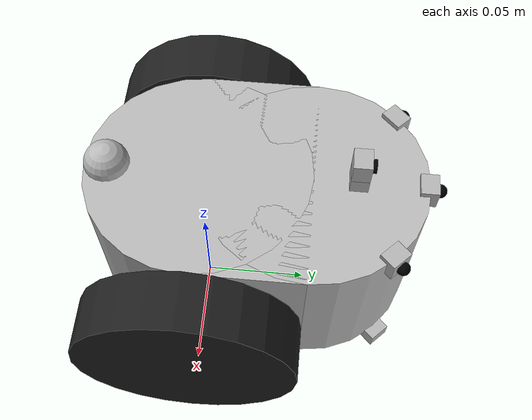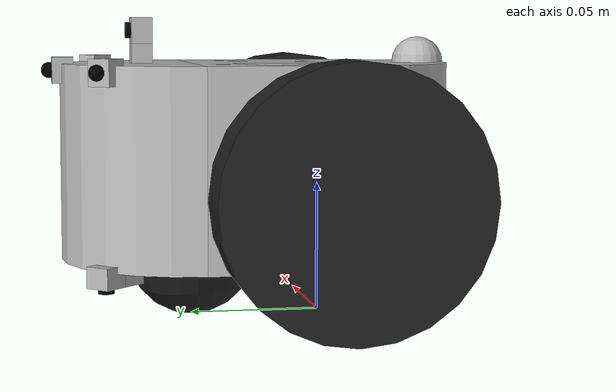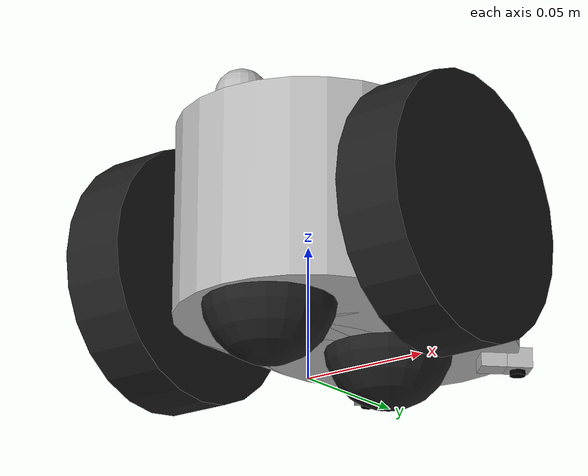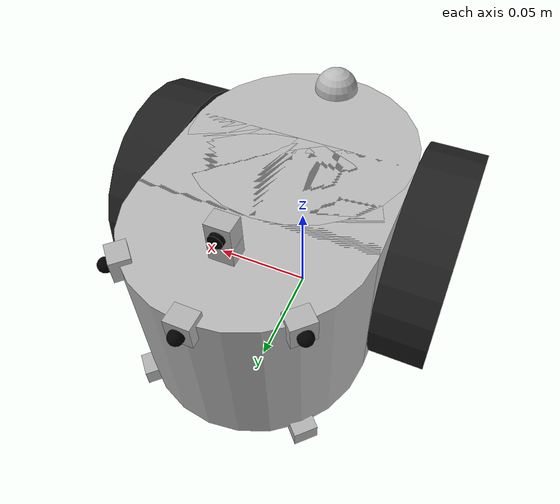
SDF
<?xml version='1.0'?>
<sdf version='1.6'>
  <model name='robot'>
    <link name='base_link'>
      <inertial>
        <mass>0.2</mass>
        <inertia>
          <ixx>0.00021875</ixx>
          <ixy>0</ixy>
          <ixz>0</ixz>
          <iyy>0.00021875</iyy>
          <iyz>0</iyz>
          <izz>0.00025</izz>
        </inertia>
        <pose frame=''>0 0 0 0 -0 0</pose>
      </inertial>
      <pose frame=''>0 0 0.06 0 -0 0</pose>
      <gravity>1</gravity>
      <self_collide>0</self_collide>
      <kinematic>0</kinematic>
      <enable_wind>0</enable_wind>
      <visual name='visual_rear'>
        <pose frame=''>0 0 0 0 -0 0</pose>
        <geometry>
          <cylinder>
            <radius>0.05</radius>
            <length>0.075</length>
          </cylinder>
        </geometry>
        <plugin name="set_color_rear" filename="libchange_body_color.so">
          <color>1.0 1.0 1.0 1.0</color>
        </plugin>
        <transparency>0</transparency>
        <cast_shadows>1</cast_shadows>
      </visual>
      <visual name='visual_front'>
        <pose frame=''>0 0.05 0 0 -0 0</pose>
        <geometry>
          <cylinder>
            <radius>0.05</radius>
            <length>0.075</length>
          </cylinder>
        </geometry>
        <plugin name="set_color_front" filename="libchange_body_color.so">
          <color>1.0 1.0 1.0 1.0</color>
        </plugin>
        <transparency>0</transparency>
        <cast_shadows>1</cast_shadows>
      </visual>
      <visual name='visual_middle'>
        <pose frame=''>0 0.025 0 0 -0 0</pose>
        <geometry>
          <box>
            <size>0.1 0.05 0.075</size>
          </box>
        </geometry>
        <plugin name="set_color_middle" filename="libchange_body_color.so">
          <color>1.0 1.0 1.0 1.0</color>
        </plugin>
        <transparency>0</transparency>
        <cast_shadows>1</cast_shadows>
      </visual>
      <collision name='collision_middle'>
        <laser_retro>0</laser_retro>
        <max_contacts>10</max_contacts>
        <pose frame=''>0 0.025 0 0 -0 0</pose>
        <geometry>
          <box>
            <size>0.1 0.05 0.075</size>
          </box>
        </geometry>
        <surface>
          <friction>
            <ode>
              <mu>1</mu>
              <mu2>1</mu2>
              <fdir1>0 0 0</fdir1>
              <slip1>0</slip1>
              <slip2>0</slip2>
            </ode>
            <torsional>
              <coefficient>1</coefficient>
              <patch_radius>0</patch_radius>
              <surface_radius>0</surface_radius>
              <use_patch_radius>1</use_patch_radius>
              <ode>
                <slip>0</slip>
              </ode>
            </torsional>
          </friction>
          <bounce>
            <restitution_coefficient>0</restitution_coefficient>
            <threshold>1e+06</threshold>
          </bounce>
          <contact>
            <collide_without_contact>0</collide_without_contact>
            <collide_without_contact_bitmask>1</collide_without_contact_bitmask>
            <collide_bitmask>1</collide_bitmask>
            <ode>
              <soft_cfm>0</soft_cfm>
              <soft_erp>0.2</soft_erp>
              <kp>1e+13</kp>
              <kd>1</kd>
              <max_vel>0.01</max_vel>
              <min_depth>0</min_depth>
            </ode>
            <bullet>
              <split_impulse>1</split_impulse>
              <split_impulse_penetration_threshold>-0.01</split_impulse_penetration_threshold>
              <soft_cfm>0</soft_cfm>
              <soft_erp>0.2</soft_erp>
              <kp>1e+13</kp>
              <kd>1</kd>
            </bullet>
          </contact>
        </surface>
      </collision>
      <collision name='collision_rear'>
        <laser_retro>0</laser_retro>
        <max_contacts>10</max_contacts>
        <pose frame=''>0 0 0 0 -0 0</pose>
        <geometry>
          <cylinder>
            <radius>0.05</radius>
            <length>0.075</length>
          </cylinder>
        </geometry>
        <surface>
          <friction>
            <ode>
              <mu>1</mu>
              <mu2>1</mu2>
              <fdir1>0 0 0</fdir1>
              <slip1>0</slip1>
              <slip2>0</slip2>
            </ode>
            <torsional>
              <coefficient>1</coefficient>
              <patch_radius>0</patch_radius>
              <surface_radius>0</surface_radius>
              <use_patch_radius>1</use_patch_radius>
              <ode>
                <slip>0</slip>
              </ode>
            </torsional>
          </friction>
          <bounce>
            <restitution_coefficient>0</restitution_coefficient>
            <threshold>1e+06</threshold>
          </bounce>
          <contact>
            <collide_without_contact>0</collide_without_contact>
            <collide_without_contact_bitmask>1</collide_without_contact_bitmask>
            <collide_bitmask>1</collide_bitmask>
            <ode>
              <soft_cfm>0</soft_cfm>
              <soft_erp>0.2</soft_erp>
              <kp>1e+13</kp>
              <kd>1</kd>
              <max_vel>0.01</max_vel>
              <min_depth>0</min_depth>
            </ode>
            <bullet>
              <split_impulse>1</split_impulse>
              <split_impulse_penetration_threshold>-0.01</split_impulse_penetration_threshold>
              <soft_cfm>0</soft_cfm>
              <soft_erp>0.2</soft_erp>
              <kp>1e+13</kp>
              <kd>1</kd>
            </bullet>
          </contact>
        </surface>
      </collision>
      <collision name='collision_front'>
        <laser_retro>0</laser_retro>
        <max_contacts>10</max_contacts>
        <pose frame=''>0 0.05 0 0 -0 0</pose>
        <geometry>
          <cylinder>
            <radius>0.05</radius>
            <length>0.075</length>
          </cylinder>
        </geometry>
        <surface>
          <friction>
            <ode>
              <mu>1</mu>
              <mu2>1</mu2>
              <fdir1>0 0 0</fdir1>
              <slip1>0</slip1>
              <slip2>0</slip2>
            </ode>
            <torsional>
              <coefficient>1</coefficient>
              <patch_radius>0</patch_radius>
              <surface_radius>0</surface_radius>
              <use_patch_radius>1</use_patch_radius>
              <ode>
                <slip>0</slip>
              </ode>
            </torsional>
          </friction>
          <bounce>
            <restitution_coefficient>0</restitution_coefficient>
            <threshold>1e+06</threshold>
          </bounce>
          <contact>
            <collide_without_contact>0</collide_without_contact>
            <collide_without_contact_bitmask>1</collide_without_contact_bitmask>
            <collide_bitmask>1</collide_bitmask>
            <ode>
              <soft_cfm>0</soft_cfm>
              <soft_erp>0.2</soft_erp>
              <kp>1e+13</kp>
              <kd>1</kd>
              <max_vel>0.01</max_vel>
              <min_depth>0</min_depth>
            </ode>
            <bullet>
              <split_impulse>1</split_impulse>
              <split_impulse_penetration_threshold>-0.01</split_impulse_penetration_threshold>
              <soft_cfm>0</soft_cfm>
              <soft_erp>0.2</soft_erp>
              <kp>1e+13</kp>
              <kd>1</kd>
            </bullet>
          </contact>
        </surface>
      </collision>
<!-- The LED -->
      <visual name='LED'>
        <pose>0 -0.04 0.0375 0 0 0</pose>
        <geometry>
          <sphere>
            <radius>0.01</radius>
          </sphere>
        </geometry>
        <plugin name='led_controller' filename='libchange_led_color.so'>
          <topicName>led_switch</topicName>
          <color>0.2 0.2 0.2 0.5</color>
        </plugin>
      </visual>
<!-- IMU Sensor -->
      <sensor name="imu_sensor" type="imu">
        <pose>0 0 0 0 0 0</pose>
        <always_on>1</always_on>
        <update_rate>100</update_rate>
        <imu>
        </imu>
        <plugin name="imu_plugin" filename="libgazebo_ros_imu_sensor.so">
          <alwaysOn>true</alwaysOn>
          <frameName>base_link</frameName>
          <bodyName>base_link</bodyName>
          <frameId>base_link</frameId>
          <topicName>imu_data</topicName>
          <serviceName>imu_service</serviceName>
          <gaussianNoise>0.0</gaussianNoise>
          <updateRate>20.0</updateRate>
          <xyzOffsets>0 0 0</xyzOffsets>
          <rpyOffsets>0 0 0</rpyOffsets>
        </plugin>
      </sensor>
    </link>
    <link name='ball_front'>
      <inertial>
        <mass>0.1</mass>
        <inertia>
          <ixx>2.5e-05</ixx>
          <ixy>0</ixy>
          <ixz>0</ixz>
          <iyy>2.5e-05</iyy>
          <iyz>0</iyz>
          <izz>2.5e-05</izz>
        </inertia>
        <pose frame=''>0 0 0 0 -0 0</pose>
      </inertial>
      <pose frame=''>0 0.05 0.025 0 -0 0</pose>
      <gravity>1</gravity>
      <self_collide>0</self_collide>
      <kinematic>0</kinematic>
      <enable_wind>0</enable_wind>
      <visual name='visual'>
        <pose frame=''>0 0 0 0 -0 0</pose>
        <geometry>
          <sphere>
            <radius>0.025</radius>
          </sphere>
        </geometry>
        <material>
          <lighting>1</lighting>
          <script>
            <uri>file://media/materials/scripts/gazebo.material</uri>
            <name>Gazebo/Black</name>
          </script>
          <shader type='pixel'>
            <normal_map>__default__</normal_map>
          </shader>
          <ambient>0 0 0 1</ambient>
          <diffuse>0 0 0 1</diffuse>
          <specular>0.01 0.01 0.01 1</specular>
          <emissive>0 0 0 1</emissive>
        </material>
        <transparency>0</transparency>
        <cast_shadows>1</cast_shadows>
      </visual>
      <collision name='collision'>
        <laser_retro>0</laser_retro>
        <max_contacts>10</max_contacts>
        <pose frame=''>0 0 0 0 -0 0</pose>
        <geometry>
          <sphere>
            <radius>0.025</radius>
          </sphere>
        </geometry>
        <surface>
          <friction>
            <ode>
              <mu>0</mu>
              <mu2>0</mu2>
              <fdir1>0 0 0</fdir1>
              <slip1>0</slip1>
              <slip2>0</slip2>
            </ode>
            <torsional>
              <coefficient>1</coefficient>
              <patch_radius>0</patch_radius>
              <surface_radius>0</surface_radius>
              <use_patch_radius>1</use_patch_radius>
              <ode>
                <slip>0</slip>
              </ode>
            </torsional>
          </friction>
          <bounce>
            <restitution_coefficient>0</restitution_coefficient>
            <threshold>1e+06</threshold>
          </bounce>
          <contact>
            <collide_without_contact>0</collide_without_contact>
            <collide_without_contact_bitmask>1</collide_without_contact_bitmask>
            <collide_bitmask>1</collide_bitmask>
            <ode>
              <soft_cfm>0</soft_cfm>
              <soft_erp>0.2</soft_erp>
              <kp>1e+13</kp>
              <kd>1</kd>
              <max_vel>0.01</max_vel>
              <min_depth>0</min_depth>
            </ode>
            <bullet>
              <split_impulse>1</split_impulse>
              <split_impulse_penetration_threshold>-0.01</split_impulse_penetration_threshold>
              <soft_cfm>0</soft_cfm>
              <soft_erp>0.2</soft_erp>
              <kp>1e+13</kp>
              <kd>1</kd>
            </bullet>
          </contact>
        </surface>
      </collision>
    </link>
    <link name='ball_rear'>
      <inertial>
        <mass>0.1</mass>
        <inertia>
          <ixx>2.5e-05</ixx>
          <ixy>0</ixy>
          <ixz>0</ixz>
          <iyy>2.5e-05</iyy>
          <iyz>0</iyz>
          <izz>2.5e-05</izz>
        </inertia>
        <pose frame=''>0 0 0 0 -0 0</pose>
      </inertial>
      <pose frame=''>0 -0.023 0.025 0 -0 0</pose>
      <gravity>1</gravity>
      <self_collide>0</self_collide>
      <kinematic>0</kinematic>
      <enable_wind>0</enable_wind>
      <visual name='visual'>
        <pose frame=''>0 0 0 0 -0 0</pose>
        <geometry>
          <sphere>
            <radius>0.025</radius>
          </sphere>
        </geometry>
        <material>
          <lighting>1</lighting>
          <script>
            <uri>file://media/materials/scripts/gazebo.material</uri>
            <name>Gazebo/Black</name>
          </script>
          <shader type='pixel'>
            <normal_map>__default__</normal_map>
          </shader>
          <ambient>0 0 0 1</ambient>
          <diffuse>0 0 0 1</diffuse>
          <specular>0.01 0.01 0.01 1</specular>
          <emissive>0 0 0 1</emissive>
        </material>
        <transparency>0</transparency>
        <cast_shadows>1</cast_shadows>
      </visual>
      <collision name='collision'>
        <laser_retro>0</laser_retro>
        <max_contacts>10</max_contacts>
        <pose frame=''>0 0 0 0 -0 0</pose>
        <geometry>
          <sphere>
            <radius>0.025</radius>
          </sphere>
        </geometry>
        <surface>
          <friction>
            <ode>
              <mu>0</mu>
              <mu2>0</mu2>
              <fdir1>0 0 0</fdir1>
              <slip1>0</slip1>
              <slip2>0</slip2>
            </ode>
            <torsional>
              <coefficient>1</coefficient>
              <patch_radius>0</patch_radius>
              <surface_radius>0</surface_radius>
              <use_patch_radius>1</use_patch_radius>
              <ode>
                <slip>0</slip>
              </ode>
            </torsional>
          </friction>
          <bounce>
            <restitution_coefficient>0</restitution_coefficient>
            <threshold>1e+06</threshold>
          </bounce>
          <contact>
            <collide_without_contact>0</collide_without_contact>
            <collide_without_contact_bitmask>1</collide_without_contact_bitmask>
            <collide_bitmask>1</collide_bitmask>
            <ode>
              <soft_cfm>0</soft_cfm>
              <soft_erp>0.2</soft_erp>
              <kp>1e+13</kp>
              <kd>1</kd>
              <max_vel>0.01</max_vel>
              <min_depth>0</min_depth>
            </ode>
            <bullet>
              <split_impulse>1</split_impulse>
              <split_impulse_penetration_threshold>-0.01</split_impulse_penetration_threshold>
              <soft_cfm>0</soft_cfm>
              <soft_erp>0.2</soft_erp>
              <kp>1e+13</kp>
              <kd>1</kd>
            </bullet>
          </contact>
        </surface>
      </collision>
    </link>
    <link name='l_wheel'>
      <inertial>
        <mass>0.1</mass>
        <inertia>
          <ixx>6.771e-05</ixx>
          <ixy>0</ixy>
          <ixz>0</ixz>
          <iyy>6.771e-05</iyy>
          <iyz>0</iyz>
          <izz>0.000125</izz>
        </inertia>
        <pose frame=''>0 0 0 0 -0 0</pose>
      </inertial>
      <pose frame=''>-0.0625 0 0.05 0 1.5707 0</pose>
      <gravity>1</gravity>
      <self_collide>0</self_collide>
      <kinematic>0</kinematic>
      <enable_wind>0</enable_wind>
      <visual name='visual'>
        <pose frame=''>0 0 0 0 -0 0</pose>
        <geometry>
          <cylinder>
            <radius>0.05</radius>
            <length>0.025</length>
          </cylinder>
        </geometry>
        <material>
          <lighting>1</lighting>
          <script>
            <uri>file://media/materials/scripts/gazebo.material</uri>
            <name>Gazebo/Black</name>
          </script>
          <shader type='pixel'>
            <normal_map>__default__</normal_map>
          </shader>
          <ambient>0 0 0 1</ambient>
          <diffuse>0 0 0 1</diffuse>
          <specular>0.01 0.01 0.01 1</specular>
          <emissive>0 0 0 1</emissive>
        </material>
        <transparency>0</transparency>
        <cast_shadows>1</cast_shadows>
      </visual>
      <collision name='collision'>
        <laser_retro>0</laser_retro>
        <max_contacts>10</max_contacts>
        <pose frame=''>0 0 0 0 -0 0</pose>
        <geometry>
          <cylinder>
            <radius>0.05</radius>
            <length>0.025</length>
          </cylinder>
        </geometry>
        <surface>
          <friction>
            <ode>
              <mu>1</mu>
              <mu2>1</mu2>
              <fdir1>0 0 0</fdir1>
              <slip1>0</slip1>
              <slip2>0</slip2>
            </ode>
            <torsional>
              <coefficient>1</coefficient>
              <patch_radius>0</patch_radius>
              <surface_radius>0</surface_radius>
              <use_patch_radius>1</use_patch_radius>
              <ode>
                <slip>0</slip>
              </ode>
            </torsional>
          </friction>
          <bounce>
            <restitution_coefficient>0</restitution_coefficient>
            <threshold>1e+06</threshold>
          </bounce>
          <contact>
            <collide_without_contact>0</collide_without_contact>
            <collide_without_contact_bitmask>1</collide_without_contact_bitmask>
            <collide_bitmask>1</collide_bitmask>
            <ode>
              <soft_cfm>0</soft_cfm>
              <soft_erp>0.2</soft_erp>
              <kp>1e+13</kp>
              <kd>1</kd>
              <max_vel>0.01</max_vel>
              <min_depth>0</min_depth>
            </ode>
            <bullet>
              <split_impulse>1</split_impulse>
              <split_impulse_penetration_threshold>-0.01</split_impulse_penetration_threshold>
              <soft_cfm>0</soft_cfm>
              <soft_erp>0.2</soft_erp>
              <kp>1e+13</kp>
              <kd>1</kd>
            </bullet>
          </contact>
        </surface>
      </collision>
    </link>
    <link name='r_wheel'>
      <inertial>
        <mass>0.1</mass>
        <inertia>
          <ixx>6.771e-05</ixx>
          <ixy>0</ixy>
          <ixz>0</ixz>
          <iyy>6.771e-05</iyy>
          <iyz>0</iyz>
          <izz>0.000125</izz>
        </inertia>
        <pose frame=''>0 0 0 0 -0 0</pose>
      </inertial>
      <pose frame=''>0.0625 0 0.05 0 1.5707 0</pose>
      <gravity>1</gravity>
      <self_collide>0</self_collide>
      <kinematic>0</kinematic>
      <enable_wind>0</enable_wind>
      <visual name='visual'>
        <pose frame=''>0 0 0 0 -0 0</pose>
        <geometry>
          <cylinder>
            <radius>0.05</radius>
            <length>0.025</length>
          </cylinder>
        </geometry>
        <material>
          <lighting>1</lighting>
          <script>
            <uri>file://media/materials/scripts/gazebo.material</uri>
            <name>Gazebo/Black</name>
          </script>
          <shader type='pixel'>
            <normal_map>__default__</normal_map>
          </shader>
          <ambient>0 0 0 1</ambient>
          <diffuse>0 0 0 1</diffuse>
          <specular>0.01 0.01 0.01 1</specular>
          <emissive>0 0 0 1</emissive>
        </material>
        <transparency>0</transparency>
        <cast_shadows>1</cast_shadows>
      </visual>
      <collision name='collision'>
        <laser_retro>0</laser_retro>
        <max_contacts>10</max_contacts>
        <pose frame=''>0 0 0 0 -0 0</pose>
        <geometry>
          <cylinder>
            <radius>0.05</radius>
            <length>0.025</length>
          </cylinder>
        </geometry>
        <surface>
          <friction>
            <ode>
              <mu>1</mu>
              <mu2>1</mu2>
              <fdir1>0 0 0</fdir1>
              <slip1>0</slip1>
              <slip2>0</slip2>
            </ode>
            <torsional>
              <coefficient>1</coefficient>
              <patch_radius>0</patch_radius>
              <surface_radius>0</surface_radius>
              <use_patch_radius>1</use_patch_radius>
              <ode>
                <slip>0</slip>
              </ode>
            </torsional>
          </friction>
          <bounce>
            <restitution_coefficient>0</restitution_coefficient>
            <threshold>1e+06</threshold>
          </bounce>
          <contact>
            <collide_without_contact>0</collide_without_contact>
            <collide_without_contact_bitmask>1</collide_without_contact_bitmask>
            <collide_bitmask>1</collide_bitmask>
            <ode>
              <soft_cfm>0</soft_cfm>
              <soft_erp>0.2</soft_erp>
              <kp>1e+13</kp>
              <kd>1</kd>
              <max_vel>0.01</max_vel>
              <min_depth>0</min_depth>
            </ode>
            <bullet>
              <split_impulse>1</split_impulse>
              <split_impulse_penetration_threshold>-0.01</split_impulse_penetration_threshold>
              <soft_cfm>0</soft_cfm>
              <soft_erp>0.2</soft_erp>
              <kp>1e+13</kp>
              <kd>1</kd>
            </bullet>
          </contact>
        </surface>
      </collision>
    </link>
    <joint name='base_link_JOINT_0' type='fixed'>
      <parent>base_link</parent>
      <child>ball_rear</child>
      <pose frame=''>0 0 0 0 -0 0</pose>
      <physics>
        <ode>
          <limit>
            <cfm>0</cfm>
            <erp>0.2</erp>
          </limit>
          <suspension>
            <cfm>0</cfm>
            <erp>0.2</erp>
          </suspension>
        </ode>
      </physics>
    </joint>
    <joint name='base_link_JOINT_1' type='fixed'>
      <parent>base_link</parent>
      <child>ball_front</child>
      <pose frame=''>0 0 0 0 -0 0</pose>
      <physics>
        <ode>
          <limit>
            <cfm>0</cfm>
            <erp>0.2</erp>
          </limit>
          <suspension>
            <cfm>0</cfm>
            <erp>0.2</erp>
          </suspension>
        </ode>
      </physics>
    </joint>
    <joint name='left_wheel_hinge' type='revolute'>
      <parent>base_link</parent>
      <child>l_wheel</child>
      <pose frame=''>0 0 0 0 -0 0</pose>
      <axis>
        <xyz>0 0 -1</xyz>
        <use_parent_model_frame>0</use_parent_model_frame>
        <dynamics>
          <spring_reference>0</spring_reference>
          <spring_stiffness>0</spring_stiffness>
          <damping>0</damping>
          <friction>0</friction>
        </dynamics>
      </axis>
      <physics>
        <ode>
          <limit>
            <cfm>0</cfm>
            <erp>0.2</erp>
          </limit>
          <suspension>
            <cfm>0</cfm>
            <erp>0.2</erp>
          </suspension>
        </ode>
      </physics>
    </joint>
    <joint name='right_wheel_hinge' type='revolute'>
      <parent>base_link</parent>
      <child>r_wheel</child>
      <pose frame=''>0 0 0 0 -0 0</pose>
      <axis>
        <xyz>0 0 -1</xyz>
        <use_parent_model_frame>0</use_parent_model_frame>
        <dynamics>
          <spring_reference>0</spring_reference>
          <spring_stiffness>0</spring_stiffness>
          <damping>0</damping>
          <friction>0</friction>
        </dynamics>
      </axis>
      <physics>
        <ode>
          <limit>
            <cfm>0</cfm>
            <erp>0.2</erp>
          </limit>
          <suspension>
            <cfm>0</cfm>
            <erp>0.2</erp>
          </suspension>
        </ode>
      </physics>
    </joint>
<!-- CAMERA -->
    <link name="camera_link">
      <pose>0.0 0.07 0.11 0 0 1.5707</pose>
      <inertial>
        <mass>0.001</mass>
        <inertia>
          <ixx>0.000166667</ixx>
          <iyy>0.000166667</iyy>
          <izz>0.000166667</izz>
        </inertia>
      </inertial>
      <collision name="collision-box">
        <pose>-0.001 0 0 0 0 0</pose>
        <geometry>
          <box>
            <size>0.008 0.01 0.01</size>
          </box>
        </geometry>
      </collision>
      <collision name="collision-lens">
        <pose>0.004 0 0 0 1.57 0</pose>
        <geometry>
          <cylinder>
            <radius>0.003</radius>
            <length>0.002</length>
          </cylinder>
        </geometry>
      </collision>
      <visual name="visual-box">
        <pose>-0.001 0 0 0 0 0</pose>
        <geometry>
          <box>
            <size>0.008 0.01 0.01</size>
          </box>
        </geometry>
        <material>
          <ambient>0.3 0.3 0.3 1</ambient>
          <diffuse>0.7 0.7 0.7 1</diffuse>
          <specular>0.1 0.1 0.1 1</specular>
          <emissive>0 0 0 0</emissive>
        </material>
      </visual>
      <visual name="visual-lens">
        <pose>0.004 0 0 0 1.57 0</pose>
        <geometry>
          <cylinder>
            <radius>0.003</radius>
            <length>0.002</length>
          </cylinder>
        </geometry>
        <material>
          <ambient>0 0 0 1</ambient>
          <diffuse>0 0 0 1</diffuse>
          <specular>0.1 0.1 0.1 1</specular>
          <emissive>0 0 0 0</emissive>
        </material>
      </visual>
      <visual name="visual-box-lifter">
        <pose>-0.001 0 -0.01 0 0 0</pose>
        <geometry>
          <box>
            <size>0.008 0.01 0.01</size>
          </box>
        </geometry>
        <material>
          <ambient>0.3 0.3 0.3 1</ambient>
          <diffuse>0.7 0.7 0.7 1</diffuse>
          <specular>0.1 0.1 0.1 1</specular>
          <emissive>0 0 0 0</emissive>
        </material>
      </visual>
<!-- RGB CAMERA SENSOR-->
      <sensor type="camera" name="camera">
        <update_rate>20</update_rate>
        <visualize>false</visualize>
        <camera name="camera">
          <horizontal_fov>1.047</horizontal_fov>
          <image>
            <width>100</width>
            <height>100</height>
            <format>R8G8B8</format>
          </image>
          <clip>
            <near>0.05</near>
            <far>10</far>
          </clip>
          <!-- Noise is sampled independently per pixel on each frame.
               That pixel's noise value is added to each of its color
               channels, which at that point lie in the range [0,1]. -->
        </camera>
        <plugin name="camera_controller" filename="libgazebo_ros_camera.so">
          <alwaysOn>true</alwaysOn>
          <updateRate>0.0</updateRate>
          <cameraName>camera/rgb</cameraName>
          <imageTopicName>image_raw</imageTopicName>
          <cameraInfoTopicName>camera_info</cameraInfoTopicName>
          <frameName>camera_link</frameName>
          <hackBaseline>0.07</hackBaseline>
          <distortionK1>0.0</distortionK1>
          <distortionK2>0.0</distortionK2>
          <distortionK3>0.0</distortionK3>
          <distortionT1>0.0</distortionT1>
          <distortionT2>0.0</distortionT2>
        </plugin>
      </sensor>
    </link>
    <joint name="camera_joint" type="fixed">
      <parent>base_link</parent>
      <child>camera_link</child>
      <pose frame=''>0 0 0 0 -0 0</pose>
      <physics>
        <ode>
          <limit>
            <cfm>0</cfm>
            <erp>0.2</erp>
          </limit>
          <suspension>
            <cfm>0</cfm>
            <erp>0.2</erp>
          </suspension>
        </ode>
      </physics>
    </joint>
<!-- SONAR(Front) -->
    <link name="sonar_f_link">
      <pose>0.0 0.10 0.095 0 0 1.5707</pose>
      <inertial>
        <mass>0.001</mass>
        <inertia>
          <ixx>0.000166667</ixx>
          <iyy>0.000166667</iyy>
          <izz>0.000166667</izz>
        </inertia>
      </inertial>
      <collision name="collision-box">
        <pose>-0.001 0 0 0 0 0</pose>
        <geometry>
          <box>
            <size>0.008 0.01 0.01</size>
          </box>
        </geometry>
      </collision>
      <collision name="collision-dome">
        <pose>0.004 0 0 0 0 0</pose>
        <geometry>
          <sphere>
            <radius>0.003</radius>
          </sphere>
        </geometry>
      </collision>
      <visual name="visual-box">
        <pose>-0.001 0 0 0 0 0</pose>
        <geometry>
          <box>
            <size>0.008 0.01 0.01</size>
          </box>
        </geometry>
        <material>
          <ambient>0.3 0.3 0.3 1</ambient>
          <diffuse>0.7 0.7 0.7 1</diffuse>
          <specular>0.1 0.1 0.1 1</specular>
          <emissive>0 0 0 0</emissive>
        </material>
      </visual>
      <visual name="visual-dome">
        <pose>0.004 0 0 0 0 0</pose>
        <geometry>
          <sphere>
            <radius>0.003</radius>
          </sphere>
        </geometry>
        <material>
          <ambient>0 0 0 1</ambient>
          <diffuse>0 0 0 1</diffuse>
          <specular>0.1 0.1 0.1 1</specular>
          <emissive>0 0 0 0</emissive>
        </material>
      </visual>
<!-- SONAR SENSOR -->
      <sensor name="sonar_f" type="ray">
        <always_on>1</always_on>
        <update_rate>10</update_rate>
        <visualize>false</visualize>
        <ray>
          <scan>
            <horizontal>
              <samples>1</samples>
              <resolution>1</resolution>
              <min_angle>0</min_angle>
              <max_angle>0</max_angle>
            </horizontal>
            <vertical>
              <samples>1</samples>
              <resolution>1</resolution>
              <min_angle>0</min_angle>
              <max_angle>0</max_angle>
            </vertical>
          </scan>
          <range>
            <min>0.03</min>
            <max>3</max>
            <resolution>0.01</resolution>
          </range>
        </ray>
        <plugin filename="libgazebo_ros_range.so" name="gazebo_ros_range_f">
          <alwaysOn>true</alwaysOn>
          <updateRate>50</updateRate>
          <topicName>sonar_f</topicName>
          <frameName>sonar_f_link</frameName>
          <radiation>INFRARED</radiation>
          <fov>0.2967</fov>
        </plugin>
        <pose>0 0 0 0 0 0</pose>
      </sensor>
    </link>
    <joint name="sonar_f_joint" type="fixed">
      <parent>base_link</parent>
      <child>sonar_f_link</child>
      <pose frame=''>0 0 0 0 -0 0</pose>
      <physics>
        <ode>
          <limit>
            <cfm>0</cfm>
            <erp>0.2</erp>
          </limit>
          <suspension>
            <cfm>0</cfm>
            <erp>0.2</erp>
          </suspension>
        </ode>
      </physics>
    </joint>

<!-- SONAR(Right) -->
    <link name="sonar_r_link">
      <pose>0.035355678 0.085355678 0.095 0 0 0.78535</pose>
      <inertial>
        <mass>0.001</mass>
        <inertia>
          <ixx>0.000166667</ixx>
          <iyy>0.000166667</iyy>
          <izz>0.000166667</izz>
        </inertia>
      </inertial>
      <collision name="collision-box">
        <pose>-0.001 0 0 0 0 0</pose>
        <geometry>
          <box>
            <size>0.008 0.01 0.01</size>
          </box>
        </geometry>
      </collision>
      <collision name="collision-dome">
        <pose>0.004 0 0 0 0 0</pose>
        <geometry>
          <sphere>
            <radius>0.003</radius>
          </sphere>
        </geometry>
      </collision>
      <visual name="visual-box">
        <pose>-0.001 0 0 0 0 0</pose>
        <geometry>
          <box>
            <size>0.008 0.01 0.01</size>
          </box>
        </geometry>
        <material>
          <ambient>0.3 0.3 0.3 1</ambient>
          <diffuse>0.7 0.7 0.7 1</diffuse>
          <specular>0.1 0.1 0.1 1</specular>
          <emissive>0 0 0 0</emissive>
        </material>
      </visual>
      <visual name="visual-dome">
        <pose>0.004 0 0 0 0 0</pose>
        <geometry>
          <sphere>
            <radius>0.003</radius>
          </sphere>
        </geometry>
        <material>
          <ambient>0 0 0 1</ambient>
          <diffuse>0 0 0 1</diffuse>
          <specular>0.1 0.1 0.1 1</specular>
          <emissive>0 0 0 0</emissive>
        </material>
      </visual>
<!-- SONAR SENSOR -->
      <sensor name="sonar_r" type="ray">
        <always_on>1</always_on>
        <update_rate>10</update_rate>
        <visualize>false</visualize>
        <ray>
          <scan>
            <horizontal>
              <samples>1</samples>
              <resolution>1</resolution>
              <min_angle>0</min_angle>
              <max_angle>0</max_angle>
            </horizontal>
            <vertical>
              <samples>1</samples>
              <resolution>1</resolution>
              <min_angle>0</min_angle>
              <max_angle>0</max_angle>
            </vertical>
          </scan>
          <range>
            <min>0.03</min>
            <max>3</max>
            <resolution>0.01</resolution>
          </range>
        </ray>
        <plugin filename="libgazebo_ros_range.so" name="gazebo_ros_range_r">
          <alwaysOn>true</alwaysOn>
          <updateRate>50</updateRate>
          <topicName>sonar_r</topicName>
          <frameName>sonar_r_link</frameName>
          <radiation>INFRARED</radiation>
          <fov>0.2967</fov>
        </plugin>
        <pose>0 0 0 0 0 0</pose>
      </sensor>
    </link>
    <joint name="sonar_r_joint" type="fixed">
      <parent>base_link</parent>
      <child>sonar_r_link</child>
      <pose frame=''>0 0 0 0 -0 0</pose>
      <physics>
        <ode>
          <limit>
            <cfm>0</cfm>
            <erp>0.2</erp>
          </limit>
          <suspension>
            <cfm>0</cfm>
            <erp>0.2</erp>
          </suspension>
        </ode>
      </physics>
    </joint>

<!-- SONAR(Left) -->
    <link name="sonar_l_link">
      <pose>-0.035355678 0.085355678 0.095 0 0 2.35605</pose>
      <inertial>
        <mass>0.001</mass>
        <inertia>
          <ixx>0.000166667</ixx>
          <iyy>0.000166667</iyy>
          <izz>0.000166667</izz>
        </inertia>
      </inertial>
      <collision name="collision-box">
        <pose>-0.001 0 0 0 0 0</pose>
        <geometry>
          <box>
            <size>0.008 0.01 0.01</size>
          </box>
        </geometry>
      </collision>
      <collision name="collision-dome">
        <pose>0.004 0 0 0 0 0</pose>
        <geometry>
          <sphere>
            <radius>0.003</radius>
          </sphere>
        </geometry>
      </collision>
      <visual name="visual-box">
        <pose>-0.001 0 0 0 0 0</pose>
        <geometry>
          <box>
            <size>0.008 0.01 0.01</size>
          </box>
        </geometry>
        <material>
          <ambient>0.3 0.3 0.3 1</ambient>
          <diffuse>0.7 0.7 0.7 1</diffuse>
          <specular>0.1 0.1 0.1 1</specular>
          <emissive>0 0 0 0</emissive>
        </material>
      </visual>
      <visual name="visual-dome">
        <pose>0.004 0 0 0 0 0</pose>
        <geometry>
          <sphere>
            <radius>0.003</radius>
          </sphere>
        </geometry>
        <material>
          <ambient>0 0 0 1</ambient>
          <diffuse>0 0 0 1</diffuse>
          <specular>0.1 0.1 0.1 1</specular>
          <emissive>0 0 0 0</emissive>
        </material>
      </visual>
<!-- SONAR SENSOR -->
      <sensor name="sonar_l" type="ray">
        <always_on>1</always_on>
        <update_rate>10</update_rate>
        <visualize>false</visualize>
        <ray>
          <scan>
            <horizontal>
              <samples>1</samples>
              <resolution>1</resolution>
              <min_angle>0</min_angle>
              <max_angle>0</max_angle>
            </horizontal>
            <vertical>
              <samples>1</samples>
              <resolution>1</resolution>
              <min_angle>0</min_angle>
              <max_angle>0</max_angle>
            </vertical>
          </scan>
          <range>
            <min>0.03</min>
            <max>3</max>
            <resolution>0.01</resolution>
          </range>
        </ray>
        <plugin filename="libgazebo_ros_range.so" name="gazebo_ros_range_l">
          <alwaysOn>true</alwaysOn>
          <updateRate>50</updateRate>
          <topicName>sonar_l</topicName>
          <frameName>sonar_l_link</frameName>
          <radiation>INFRARED</radiation>
          <fov>0.2967</fov>
        </plugin>
        <pose>0 0 0 0 0 0</pose>
      </sensor>
    </link>
    <joint name="sonar_l_joint" type="fixed">
      <parent>base_link</parent>
      <child>sonar_l_link</child>
      <pose frame=''>0 0 0 0 -0 0</pose>
      <physics>
        <ode>
          <limit>
            <cfm>0</cfm>
            <erp>0.2</erp>
          </limit>
          <suspension>
            <cfm>0</cfm>
            <erp>0.2</erp>
          </suspension>
        </ode>
      </physics>
    </joint>

<!-- COLOR SENSOR(RIGHT) -->
    <link name="color_sensor_r_link">
      <pose>0.035355678 0.085355678 0.02 0 1.5707 0.78535</pose>
      <inertial>
        <mass>0.001</mass>
        <inertia>
          <ixx>0.000166667</ixx>
          <iyy>0.000166667</iyy>
          <izz>0.000166667</izz>
        </inertia>
      </inertial>
      <collision name="collision-box">
        <pose>-0.001 0 0 0 0 0</pose>
        <geometry>
          <box>
            <size>0.008 0.01 0.01</size>
          </box>
        </geometry>
      </collision>
      <collision name="collision-lens">
        <pose>0.004 0 0 0 1.57 0</pose>
        <geometry>
          <cylinder>
            <radius>0.003</radius>
            <length>0.002</length>
          </cylinder>
        </geometry>
      </collision>
      <visual name="visual-box">
        <pose>-0.001 0 0 0 0 0</pose>
        <geometry>
          <box>
            <size>0.008 0.01 0.01</size>
          </box>
        </geometry>
        <material>
          <ambient>0.3 0.3 0.3 1</ambient>
          <diffuse>0.7 0.7 0.7 1</diffuse>
          <specular>0.1 0.1 0.1 1</specular>
          <emissive>0 0 0 0</emissive>
        </material>
      </visual>
      <visual name="visual-lens">
        <pose>0.004 0 0 0 1.57 0</pose>
        <geometry>
          <cylinder>
            <radius>0.003</radius>
            <length>0.002</length>
          </cylinder>
        </geometry>
        <material>
          <ambient>0 0 0 1</ambient>
          <diffuse>0 0 0 1</diffuse>
          <specular>0.1 0.1 0.1 1</specular>
          <emissive>0 0 0 0</emissive>
        </material>
      </visual>
      <visual name="visual-box-lifter">
        <pose>-0.001 0 -0.01 0 0 0</pose>
        <geometry>
          <box>
            <size>0.008 0.01 0.01</size>
          </box>
        </geometry>
        <material>
          <ambient>0.3 0.3 0.3 1</ambient>
          <diffuse>0.7 0.7 0.7 1</diffuse>
          <specular>0.1 0.1 0.1 1</specular>
          <emissive>0 0 0 0</emissive>
        </material>
      </visual>
<!-- RGB CAMERA SENSOR AS COLOR SENSOR(RIGHT)-->
      <sensor type="camera" name="color_sensor_r">
        <update_rate>20</update_rate>
        <visualize>false</visualize>
        <camera name="color_sensor_r">
          <horizontal_fov>0.01047</horizontal_fov>
          <image>
            <width>1</width>
            <height>1</height>
            <format>R8G8B8</format>
          </image>
          <clip>
            <near>0.01</near>
            <far> 0.03</far>
          </clip>
          <!-- Noise is sampled independently per pixel on each frame.
               That pixel's noise value is added to each of its color
               channels, which at that point lie in the range [0,1]. -->
        </camera>
        <plugin name="camera_controller_color_sensor_r" filename="libgazebo_ros_camera.so">
          <alwaysOn>true</alwaysOn>
          <updateRate>0.0</updateRate>
          <cameraName>color_sensor_r/rgb</cameraName>
          <imageTopicName>image_raw</imageTopicName>
          <cameraInfoTopicName>color_sensor_r_info</cameraInfoTopicName>
          <frameName>color_sensor_r_link</frameName>
          <hackBaseline>0.07</hackBaseline>
          <distortionK1>0.0</distortionK1>
          <distortionK2>0.0</distortionK2>
          <distortionK3>0.0</distortionK3>
          <distortionT1>0.0</distortionT1>
          <distortionT2>0.0</distortionT2>
        </plugin>
      </sensor>
    </link>
    <joint name="color_sensor_r_joint" type="fixed">
      <parent>base_link</parent>
      <child>color_sensor_r_link</child>
      <pose frame=''>0 0 0 0 -0 0</pose>
      <physics>
        <ode>
          <limit>
            <cfm>0</cfm>
            <erp>0.2</erp>
          </limit>
          <suspension>
            <cfm>0</cfm>
            <erp>0.2</erp>
          </suspension>
        </ode>
      </physics>
    </joint>

<!-- COLOR SENSOR(LEFT) -->
    <link name="color_sensor_l_link">
      <pose>-0.035355678 0.085355678 0.02 0 1.5707 2.35605</pose>
      <inertial>
        <mass>0.001</mass>
        <inertia>
          <ixx>0.000166667</ixx>
          <iyy>0.000166667</iyy>
          <izz>0.000166667</izz>
        </inertia>
      </inertial>
      <collision name="collision-box">
        <pose>-0.001 0 0 0 0 0</pose>
        <geometry>
          <box>
            <size>0.008 0.01 0.01</size>
          </box>
        </geometry>
      </collision>
      <collision name="collision-lens">
        <pose>0.004 0 0 0 1.57 0</pose>
        <geometry>
          <cylinder>
            <radius>0.003</radius>
            <length>0.002</length>
          </cylinder>
        </geometry>
      </collision>
      <visual name="visual-box">
        <pose>-0.001 0 0 0 0 0</pose>
        <geometry>
          <box>
            <size>0.008 0.01 0.01</size>
          </box>
        </geometry>
        <material>
          <ambient>0.3 0.3 0.3 1</ambient>
          <diffuse>0.7 0.7 0.7 1</diffuse>
          <specular>0.1 0.1 0.1 1</specular>
          <emissive>0 0 0 0</emissive>
        </material>
      </visual>
      <visual name="visual-lens">
        <pose>0.004 0 0 0 1.57 0</pose>
        <geometry>
          <cylinder>
            <radius>0.003</radius>
            <length>0.002</length>
          </cylinder>
        </geometry>
        <material>
          <ambient>0 0 0 1</ambient>
          <diffuse>0 0 0 1</diffuse>
          <specular>0.1 0.1 0.1 1</specular>
          <emissive>0 0 0 0</emissive>
        </material>
      </visual>
      <visual name="visual-box-lifter">
        <pose>-0.001 0 -0.01 0 0 0</pose>
        <geometry>
          <box>
            <size>0.008 0.01 0.01</size>
          </box>
        </geometry>
        <material>
          <ambient>0.3 0.3 0.3 1</ambient>
          <diffuse>0.7 0.7 0.7 1</diffuse>
          <specular>0.1 0.1 0.1 1</specular>
          <emissive>0 0 0 0</emissive>
        </material>
      </visual>
<!-- RGB CAMERA SENSOR AS COLOR SENSOR(LEFT)-->
      <sensor type="camera" name="color_sensor_l">
        <update_rate>20</update_rate>
        <visualize>false</visualize>
        <camera name="color_sensor_l">
          <horizontal_fov>0.01047</horizontal_fov>
          <image>
            <width>1</width>
            <height>1</height>
            <format>R8G8B8</format>
          </image>
          <clip>
            <near>0.01</near>
            <far> 0.03</far>
          </clip>
          <!-- Noise is sampled independently per pixel on each frame.
               That pixel's noise value is added to each of its color
               channels, which at that point lie in the range [0,1]. -->
        </camera>
        <plugin name="camera_controller_color_sensor_l" filename="libgazebo_ros_camera.so">
          <alwaysOn>true</alwaysOn>
          <updateRate>0.0</updateRate>
          <cameraName>color_sensor_l/rgb</cameraName>
          <imageTopicName>image_raw</imageTopicName>
          <cameraInfoTopicName>color_sensor_r_info</cameraInfoTopicName>
          <frameName>color_sensor_l_link</frameName>
          <hackBaseline>0.07</hackBaseline>
          <distortionK1>0.0</distortionK1>
          <distortionK2>0.0</distortionK2>
          <distortionK3>0.0</distortionK3>
          <distortionT1>0.0</distortionT1>
          <distortionT2>0.0</distortionT2>
        </plugin>
      </sensor>
    </link>
    <joint name="color_sensor_l_joint" type="fixed">
      <parent>base_link</parent>
      <child>color_sensor_l_link</child>
      <pose frame=''>0 0 0 0 -0 0</pose>
      <physics>
        <ode>
          <limit>
            <cfm>0</cfm>
            <erp>0.2</erp>
          </limit>
          <suspension>
            <cfm>0</cfm>
            <erp>0.2</erp>
          </suspension>
        </ode>
      </physics>
    </joint>

    <plugin name="differential_drive_controller" filename="libgazebo_ros_diff_drive.so">
      <alwaysOn>true</alwaysOn>
      <updateRate>100.0</updateRate>
      <leftJoint>right_wheel_hinge</leftJoint>
      <rightJoint>left_wheel_hinge</rightJoint>
      <wheelSeparation>0.4</wheelSeparation>
      <wheelDiameter>0.215</wheelDiameter>
      <robotBaseFrame>base_link</robotBaseFrame>
      <torque>200</torque>
      <commandTopic>cmd_vel</commandTopic>
      <odometryTopic>odom</odometryTopic>
      <odometryFrame>odom</odometryFrame>
      <broadcastTF>true</broadcastTF>
      <legacyMode>0</legacyMode>
    </plugin>

<!-- Publish the Ground Truth -->
    <plugin name="p3d_base_controller" filename="libgazebo_ros_p3d.so">
      <alwaysOn>true</alwaysOn>
      <updateRate>50.0</updateRate>
      <bodyName>base_link</bodyName>
      <topicName>ground_truth/state</topicName>
      <gaussianNoise>0.01</gaussianNoise>
      <frameName>world</frameName>
      <xyzOffsets>0 0 0</xyzOffsets>
      <rpyOffsets>0 0 0</rpyOffsets>
    </plugin>

    <static>0</static>
    <allow_auto_disable>1</allow_auto_disable>
  </model>
</sdf>
